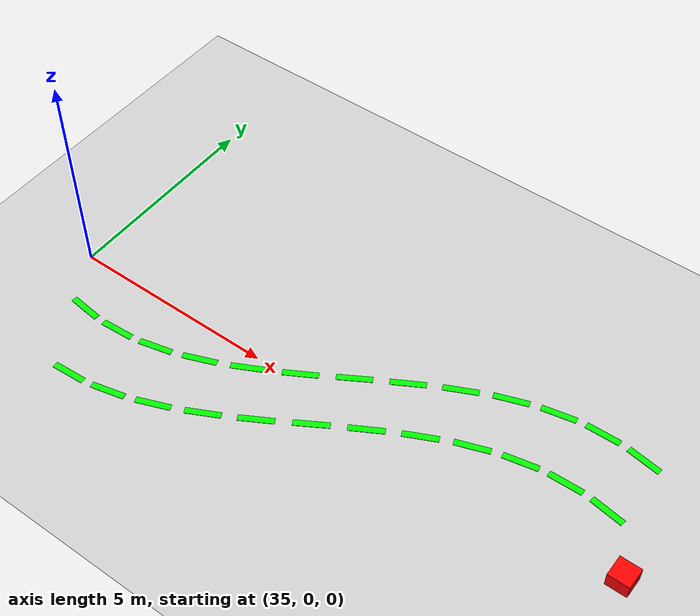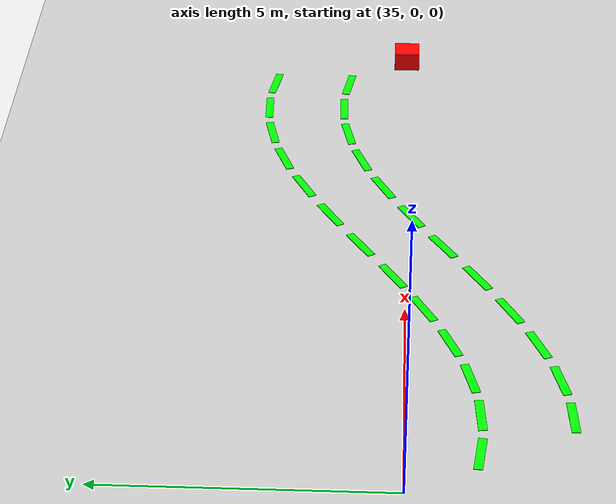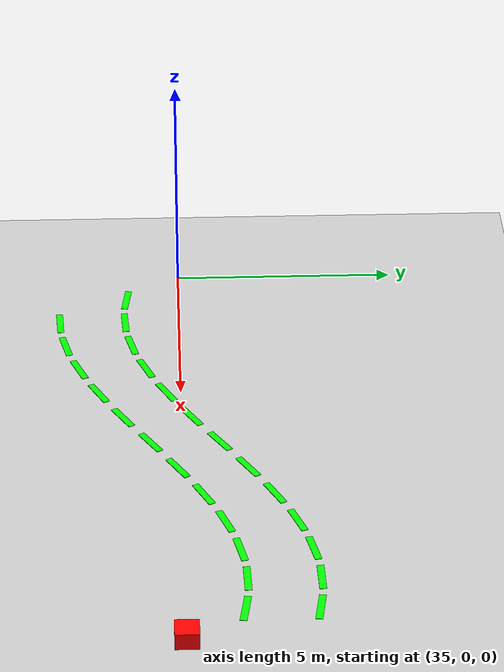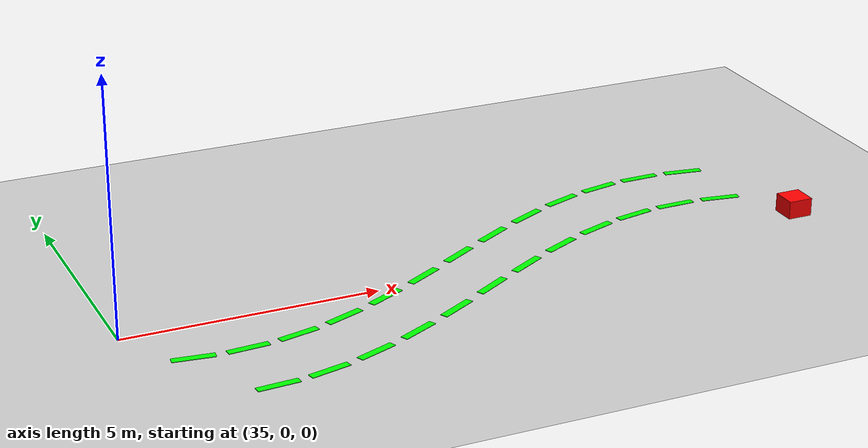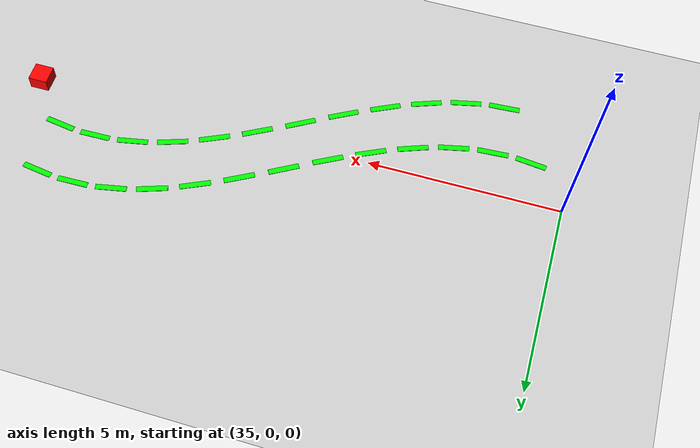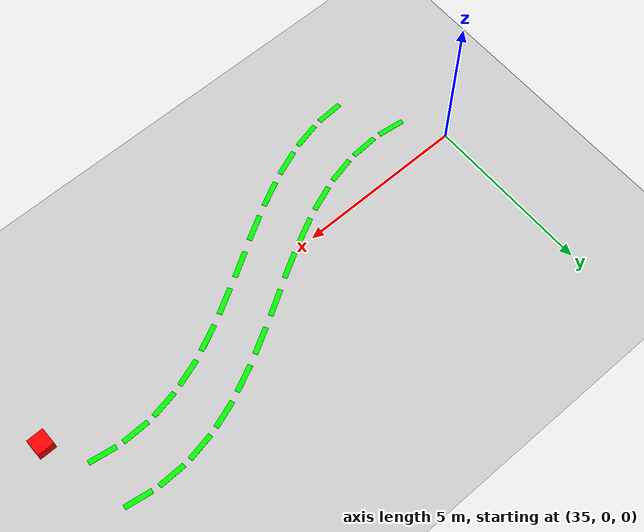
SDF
<sdf version="1.6">
 <world name="curved_lane_world">
  <include><uri>model://sun</uri></include>
  <include><uri>model://ground_plane</uri></include>
  <model name="lane_seg_36_right">
   <static>true</static>
   <pose>36.00 -1.21 0 0 0 -0.12</pose>
   <link name="lane_link_36_right">
    <visual name="segment">
     <pose>0 0 0.02 0 0 0</pose>
     <geometry><box><size>0.8 0.15 0.01</size></box></geometry>
     <material><ambient>0 1 0 1</ambient><diffuse>0 1 0 1</diffuse></material>
    </visual>
   </link>
  </model>
  <model name="lane_seg_37_left">
   <static>true</static>
   <pose>37.00 -2.74 0 0 0 0.06</pose>
   <link name="lane_link_37_left">
    <visual name="segment">
     <pose>0 0 0.02 0 0 0</pose>
     <geometry><box><size>0.8 0.15 0.01</size></box></geometry>
     <material><ambient>0 1 0 1</ambient><diffuse>0 1 0 1</diffuse></material>
    </visual>
   </link>
  </model>
  <model name="lane_seg_37_right">
   <static>true</static>
   <pose>37.00 -1.24 0 0 0 0.06</pose>
   <link name="lane_link_37_right">
    <visual name="segment">
     <pose>0 0 0.02 0 0 0</pose>
     <geometry><box><size>0.8 0.15 0.01</size></box></geometry>
     <material><ambient>0 1 0 1</ambient><diffuse>0 1 0 1</diffuse></material>
    </visual>
   </link>
  </model>
  <model name="lane_seg_38_left">
   <static>true</static>
   <pose>38.00 -2.59 0 0 0 0.23</pose>
   <link name="lane_link_38_left">
    <visual name="segment">
     <pose>0 0 0.02 0 0 0</pose>
     <geometry><box><size>0.8 0.15 0.01</size></box></geometry>
     <material><ambient>0 1 0 1</ambient><diffuse>0 1 0 1</diffuse></material>
    </visual>
   </link>
  </model>
  <model name="lane_seg_38_right">
   <static>true</static>
   <pose>38.00 -1.09 0 0 0 0.23</pose>
   <link name="lane_link_38_right">
    <visual name="segment">
     <pose>0 0 0.02 0 0 0</pose>
     <geometry><box><size>0.8 0.15 0.01</size></box></geometry>
     <material><ambient>0 1 0 1</ambient><diffuse>0 1 0 1</diffuse></material>
    </visual>
   </link>
  </model>
  <model name="lane_seg_39_left">
   <static>true</static>
   <pose>39.00 -2.27 0 0 0 0.37</pose>
   <link name="lane_link_39_left">
    <visual name="segment">
     <pose>0 0 0.02 0 0 0</pose>
     <geometry><box><size>0.8 0.15 0.01</size></box></geometry>
     <material><ambient>0 1 0 1</ambient><diffuse>0 1 0 1</diffuse></material>
    </visual>
   </link>
  </model>
  <model name="lane_seg_39_right">
   <static>true</static>
   <pose>39.00 -0.77 0 0 0 0.37</pose>
   <link name="lane_link_39_right">
    <visual name="segment">
     <pose>0 0 0.02 0 0 0</pose>
     <geometry><box><size>0.8 0.15 0.01</size></box></geometry>
     <material><ambient>0 1 0 1</ambient><diffuse>0 1 0 1</diffuse></material>
    </visual>
   </link>
  </model>
  <model name="lane_seg_40_left">
   <static>true</static>
   <pose>40.00 -1.82 0 0 0 0.47</pose>
   <link name="lane_link_40_left">
    <visual name="segment">
     <pose>0 0 0.02 0 0 0</pose>
     <geometry><box><size>0.8 0.15 0.01</size></box></geometry>
     <material><ambient>0 1 0 1</ambient><diffuse>0 1 0 1</diffuse></material>
    </visual>
   </link>
  </model>
  <model name="lane_seg_40_right">
   <static>true</static>
   <pose>40.00 -0.32 0 0 0 0.47</pose>
   <link name="lane_link_40_right">
    <visual name="segment">
     <pose>0 0 0.02 0 0 0</pose>
     <geometry><box><size>0.8 0.15 0.01</size></box></geometry>
     <material><ambient>0 1 0 1</ambient><diffuse>0 1 0 1</diffuse></material>
    </visual>
   </link>
  </model>
  <model name="lane_seg_41_left">
   <static>true</static>
   <pose>41.00 -1.28 0 0 0 0.52</pose>
   <link name="lane_link_41_left">
    <visual name="segment">
     <pose>0 0 0.02 0 0 0</pose>
     <geometry><box><size>0.8 0.15 0.01</size></box></geometry>
     <material><ambient>0 1 0 1</ambient><diffuse>0 1 0 1</diffuse></material>
    </visual>
   </link>
  </model>
  <model name="lane_seg_41_right">
   <static>true</static>
   <pose>41.00 0.22 0 0 0 0.52</pose>
   <link name="lane_link_41_right">
    <visual name="segment">
     <pose>0 0 0.02 0 0 0</pose>
     <geometry><box><size>0.8 0.15 0.01</size></box></geometry>
     <material><ambient>0 1 0 1</ambient><diffuse>0 1 0 1</diffuse></material>
    </visual>
   </link>
  </model>
  <model name="lane_seg_42_left">
   <static>true</static>
   <pose>42.00 -0.68 0 0 0 0.54</pose>
   <link name="lane_link_42_left">
    <visual name="segment">
     <pose>0 0 0.02 0 0 0</pose>
     <geometry><box><size>0.8 0.15 0.01</size></box></geometry>
     <material><ambient>0 1 0 1</ambient><diffuse>0 1 0 1</diffuse></material>
    </visual>
   </link>
  </model>
  <model name="lane_seg_42_right">
   <static>true</static>
   <pose>42.00 0.82 0 0 0 0.54</pose>
   <link name="lane_link_42_right">
    <visual name="segment">
     <pose>0 0 0.02 0 0 0</pose>
     <geometry><box><size>0.8 0.15 0.01</size></box></geometry>
     <material><ambient>0 1 0 1</ambient><diffuse>0 1 0 1</diffuse></material>
    </visual>
   </link>
  </model>
  <model name="lane_seg_43_left">
   <static>true</static>
   <pose>43.00 -0.10 0 0 0 0.52</pose>
   <link name="lane_link_43_left">
    <visual name="segment">
     <pose>0 0 0.02 0 0 0</pose>
     <geometry><box><size>0.8 0.15 0.01</size></box></geometry>
     <material><ambient>0 1 0 1</ambient><diffuse>0 1 0 1</diffuse></material>
    </visual>
   </link>
  </model>
  <model name="lane_seg_43_right">
   <static>true</static>
   <pose>43.00 1.40 0 0 0 0.52</pose>
   <link name="lane_link_43_right">
    <visual name="segment">
     <pose>0 0 0.02 0 0 0</pose>
     <geometry><box><size>0.8 0.15 0.01</size></box></geometry>
     <material><ambient>0 1 0 1</ambient><diffuse>0 1 0 1</diffuse></material>
    </visual>
   </link>
  </model>
  <model name="lane_seg_44_left">
   <static>true</static>
   <pose>44.00 0.43 0 0 0 0.45</pose>
   <link name="lane_link_44_left">
    <visual name="segment">
     <pose>0 0 0.02 0 0 0</pose>
     <geometry><box><size>0.8 0.15 0.01</size></box></geometry>
     <material><ambient>0 1 0 1</ambient><diffuse>0 1 0 1</diffuse></material>
    </visual>
   </link>
  </model>
  <model name="lane_seg_44_right">
   <static>true</static>
   <pose>44.00 1.93 0 0 0 0.45</pose>
   <link name="lane_link_44_right">
    <visual name="segment">
     <pose>0 0 0.02 0 0 0</pose>
     <geometry><box><size>0.8 0.15 0.01</size></box></geometry>
     <material><ambient>0 1 0 1</ambient><diffuse>0 1 0 1</diffuse></material>
    </visual>
   </link>
  </model>
  <model name="lane_seg_45_left">
   <static>true</static>
   <pose>45.00 0.86 0 0 0 0.34</pose>
   <link name="lane_link_45_left">
    <visual name="segment">
     <pose>0 0 0.02 0 0 0</pose>
     <geometry><box><size>0.8 0.15 0.01</size></box></geometry>
     <material><ambient>0 1 0 1</ambient><diffuse>0 1 0 1</diffuse></material>
    </visual>
   </link>
  </model>
  <model name="lane_seg_45_right">
   <static>true</static>
   <pose>45.00 2.36 0 0 0 0.34</pose>
   <link name="lane_link_45_right">
    <visual name="segment">
     <pose>0 0 0.02 0 0 0</pose>
     <geometry><box><size>0.8 0.15 0.01</size></box></geometry>
     <material><ambient>0 1 0 1</ambient><diffuse>0 1 0 1</diffuse></material>
    </visual>
   </link>
  </model>
  <model name="lane_seg_46_left">
   <static>true</static>
   <pose>46.00 1.14 0 0 0 0.20</pose>
   <link name="lane_link_46_left">
    <visual name="segment">
     <pose>0 0 0.02 0 0 0</pose>
     <geometry><box><size>0.8 0.15 0.01</size></box></geometry>
     <material><ambient>0 1 0 1</ambient><diffuse>0 1 0 1</diffuse></material>
    </visual>
   </link>
  </model>
  <model name="lane_seg_46_right">
   <static>true</static>
   <pose>46.00 2.64 0 0 0 0.20</pose>
   <link name="lane_link_46_right">
    <visual name="segment">
     <pose>0 0 0.02 0 0 0</pose>
     <geometry><box><size>0.8 0.15 0.01</size></box></geometry>
     <material><ambient>0 1 0 1</ambient><diffuse>0 1 0 1</diffuse></material>
    </visual>
   </link>
  </model>
  <model name="lane_seg_47_left">
   <static>true</static>
   <pose>47.00 1.25 0 0 0 0.02</pose>
   <link name="lane_link_47_left">
    <visual name="segment">
     <pose>0 0 0.02 0 0 0</pose>
     <geometry><box><size>0.8 0.15 0.01</size></box></geometry>
     <material><ambient>0 1 0 1</ambient><diffuse>0 1 0 1</diffuse></material>
    </visual>
   </link>
  </model>
  <model name="lane_seg_47_right">
   <static>true</static>
   <pose>47.00 2.75 0 0 0 0.02</pose>
   <link name="lane_link_47_right">
    <visual name="segment">
     <pose>0 0 0.02 0 0 0</pose>
     <geometry><box><size>0.8 0.15 0.01</size></box></geometry>
     <material><ambient>0 1 0 1</ambient><diffuse>0 1 0 1</diffuse></material>
    </visual>
   </link>
  </model>
  <model name="lane_seg_48_left">
   <static>true</static>
   <pose>48.00 1.18 0 0 0 -0.15</pose>
   <link name="lane_link_48_left">
    <visual name="segment">
     <pose>0 0 0.02 0 0 0</pose>
     <geometry><box><size>0.8 0.15 0.01</size></box></geometry>
     <material><ambient>0 1 0 1</ambient><diffuse>0 1 0 1</diffuse></material>
    </visual>
   </link>
  </model>
  <model name="lane_seg_48_right">
   <static>true</static>
   <pose>48.00 2.68 0 0 0 -0.15</pose>
   <link name="lane_link_48_right">
    <visual name="segment">
     <pose>0 0 0.02 0 0 0</pose>
     <geometry><box><size>0.8 0.15 0.01</size></box></geometry>
     <material><ambient>0 1 0 1</ambient><diffuse>0 1 0 1</diffuse></material>
    </visual>
   </link>
  </model>
  <model name="destination_point">
   <static>true</static>
   <pose>49 0 0 0 0 0</pose>
   <link name="destination_link">
    <visual name="destination_visual">
     <pose>0 0 0.1 0 0 0</pose>
     <geometry><box><size>0.5 0.5 0.5</size></box></geometry>
     <material><ambient>1 0 0 1</ambient><diffuse>1 0 0 1</diffuse></material>
    </visual>
   </link>
  </model>
 </world>
</sdf>
